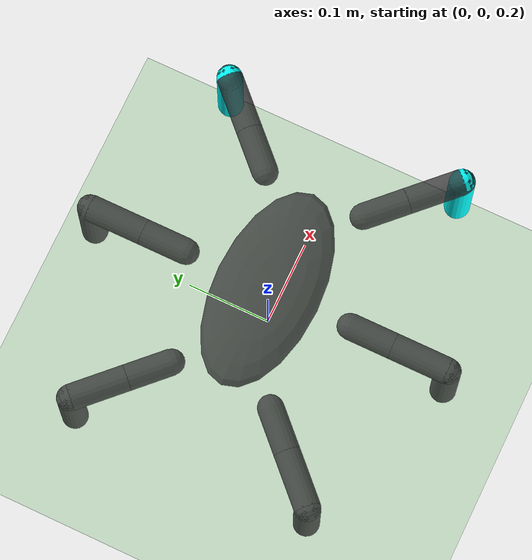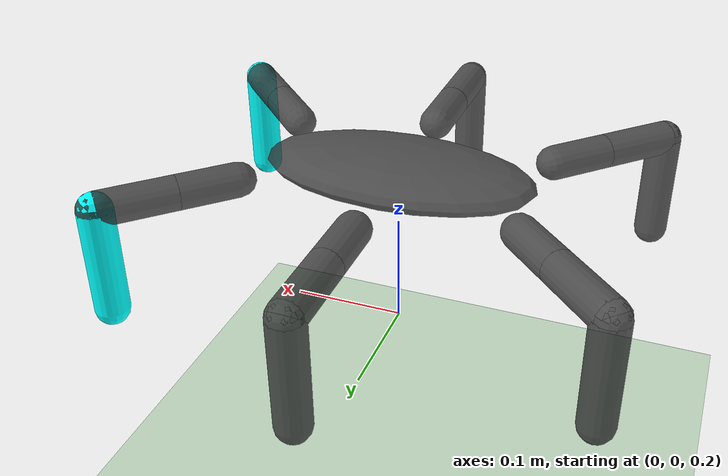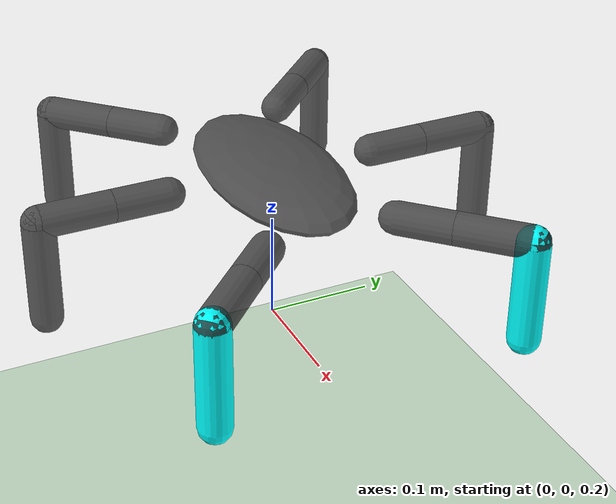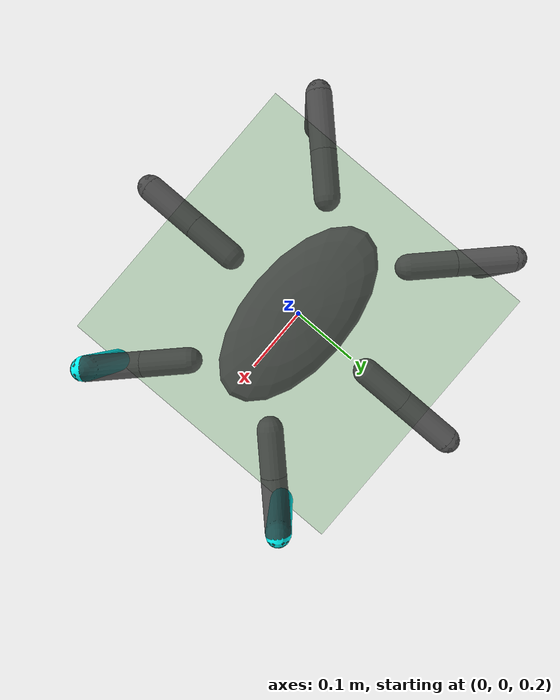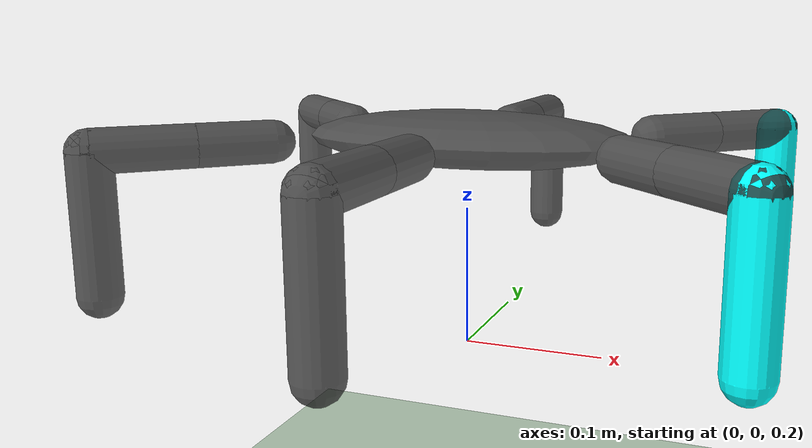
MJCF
<mujoco model="hexapod">
  <compiler angle="radian" coordinate="local" inertiafromgeom="true"/>
  <option integrator="RK4" timestep="0.02"/>
  <size nconmax="1000"/>

  <default>
    <joint armature="0.1" damping="3" limited="true"/>
    <geom conaffinity="0" condim="3" density="5.0" friction="1 0.5 0.5" margin="0.005" rgba="0.2 0.2 0.2 0.8"/>
  </default>

  <asset>
    <texture type="skybox" builtin="gradient" width="100" height="100" rgb1="1 1 1" rgb2="0 0 0" />
    <texture name="texgeom" type="cube" builtin="flat" mark="cross" width="127" height="1278" rgb1="0.8 0.6 0.4" rgb2="0.8 0.6 0.4" markrgb="1 1 1" random="0.01" />
    <texture name="texplane" type="2d" width="30" height="30" file="white2.png"/>
    <texture name="texhex" type="2d" width="1" height="1" file="white2.png"/>
    <texture name="texleg" type="2d" width="1" height="1" file="white2.png"/>
    <material name="MatPlane" reflectance="0.3" shininess="0.2" specular="1" texrepeat="8 8" texture="texplane"/>
    <material name="MatHex" reflectance="0.0" shininess="1" specular="1" texrepeat=".6 0.6" texture="texhex"/>
    <material name="MatLeg" reflectance="0.0" shininess="1" specular="1" texrepeat="1 1" texture="texleg"/>
    <material name='geom' texture="texgeom" texuniform="true" />
  </asset>

  <worldbody>
    <light cutoff="100" diffuse="0.5 0.5 0.5" dir="-0 0 -1.3" directional="false" exponent="1" pos="0 0 0.3" specular=".1 .1 .1"/>
    <geom conaffinity="1" condim="3" material="MatPlane" name="floor" pos="0 0 0" rgba="0.8 0.9 0.8 1" size="10 10 10" type="plane"/>
    <body name="torso" pos="0 0 0.35">
      <camera name="track" mode="track" pos="0 -1.2 0.4" xyaxes="1 0 0 0 0.3 1"/>
      <geom name="torso_geom" pos="0 0 0" size="0.12 0.06 0.02" mass="1" type="ellipsoid"/>
      <joint armature="0" damping="0" limited="false" margin="0.01" name="root" pos="0 0 0" type="free"/>

      <body name="front_left_leg" pos="0.12 0.06 0">
        <joint axis="0 0 1" name="coxa_fl" pos="0.0 0.0 0.0" range="-1.5708 1.5708" type="hinge"/>
          <geom fromto="0.0 0.0 0.0 0.03676 0.03676 0.0" name="coxa_fl_geom" size="0.015"  type="capsule"/>
          <body pos="0.03676 0.03676 0">
            <joint axis="-1 1 0" name="femur_fl" pos="0.0 0.0 0.0" range="-1.5708 1.5708" type="hinge"/>
            <geom fromto="0.0 0.0 0.0 0.0466 0.0466 0.0" name="femur_fl_geom" size="0.015" type="capsule"/>
             <body pos="0.0466 0.0466 0.0">
                <joint axis="-1 1 0" name="tibia_fl" pos="0.0 0.0 0.0" range="-0.7854 0.7854" type="hinge"/>
                <geom fromto="0.0 0.0 0.0 0.0 0.0 -0.095" name="tibia_fl_geom" size="0.015" type="capsule" rgba="0 1 1 1"/>
            </body>
          </body>
      </body>

      <body name="mid_left_leg" pos="0.0 0.1 0">
        <joint axis="0 0 1" name="coxa_ml" pos="0.0 0.0 0.0" range="-1.5708 1.5708" type="hinge"/>
          <geom fromto="0.0 0.0 0.0 0.0 0.052 0.0" name="coxa_ml_geom" size="0.015" type="capsule"/>
          <body pos="0.0 0.052 0">
            <joint axis="-1 0 0" name="femur_ml" pos="0.0 0.0 0.0" range="-1.5708 1.5708" type="hinge"/>
            <geom fromto="0.0 0.0 0.0 0.0 0.066 0.0" name="femur_ml_geom" size="0.015" type="capsule"/>
             <body pos="0.0 0.066 0">
                <joint axis="-1 0 0" name="tibia_ml" pos="0.0 0.0 0.0" range="-0.7854 0.7854" type="hinge"/>
                <geom fromto="0.0 0.0 0.0 0.0 0.0 -0.095" name="tibia_ml_geom" size="0.015" type="capsule"/>
            </body>
          </body>
      </body>

      <body name="front_right_leg" pos="0.12 -0.06 0">
        <joint axis="0 0 1" name="coxa_fr" pos="0.0 0.0 0.0" range="-1.5708 1.5708" type="hinge"/>
          <geom fromto="0.0 0.0 0.0 0.03676 -0.03676 0.0" name="coxa_fr_geom" size="0.015" type="capsule"/>
          <body pos="0.03676 -0.03676 0">
            <joint axis="1 1 0" name="femur_fr" pos="0.0 0.0 0.0" range="-1.5708 1.5708" type="hinge"/>
            <geom fromto="0.0 0.0 0.0 0.0466 -0.0466 0.0" name="femur_fr_geom" size="0.015" type="capsule"/>
             <body pos="0.0466 -0.0466 0">
                <joint axis="1 1 0" name="tibia_fr" pos="0.0 0.0 0.0" range="-0.7854 0.7854" type="hinge"/>
                <geom fromto="0.0 0.0 0.0 0.0 0.0 -0.095" name="tibia_fr_geom" size="0.015" type="capsule" rgba="0 1 1 1"/>
            </body>
          </body>
      </body>

      <body name="mid_right_leg" pos="0.0 -0.1 0">
        <joint axis="0 0 1" name="coxa_mr" pos="0.0 0.0 0.0" range="-1.5708 1.5708" type="hinge"/>
          <geom fromto="0.0 0.0 0.0 0.0 -0.052 0.0" name="coxa_mr_geom" size="0.015" type="capsule"/>
          <body pos="0.0 -0.052 0">
            <joint axis="1 0 0" name="femur_mr" pos="0.0 0.0 0.0" range="-1.5708 1.5708" type="hinge"/>
            <geom fromto="0.0 0.0 0.0 0.0 -0.066 0.0" name="femur_mr_geom" size="0.015" type="capsule"/>
             <body pos="0.0 -0.066 0">
                <joint axis="1 0 0" name="tibia_mr" pos="0.0 0.0 0.0" range="-0.7854 0.7854" type="hinge"/>
                <geom fromto="0.0 0.0 0.0 0.0 0 -0.095" name="tibia_mr_geom" size="0.015" type="capsule"/>
            </body>
          </body>
      </body>

      <body name="back_right_leg" pos="-0.12 -0.06 0">
        <joint axis="0 0 1" name="coxa_rr" pos="0.0 0.0 0.0" range="-1.5708 1.5708" type="hinge"/>
          <geom fromto="0.0 0.0 0.0 -0.03676 -0.03676 0.0" name="coxa_rr_geom" size="0.015" type="capsule"/>
          <body pos="-0.03676 -0.03676 0">
            <joint axis="1 -1 0" name="femur_rr" pos="0.0 0.0 0.0" range="-1.5708 1.5708" type="hinge"/>
            <geom fromto="0.0 0.0 0.0 -0.0466 -0.0466 0.0" name="femur_rr_geom" size="0.015" type="capsule"/>
             <body pos="-0.0466 -0.0466 0">
                <joint axis="1 -1 0" name="tibia_rr" pos="0.0 0.0 0.0" range="-0.7854 0.7854" type="hinge"/>
                <geom fromto="0.0 0.0 0.0 0.0 0.0 -0.095" name="tibia_rr_geom" size="0.015" type="capsule"/>
            </body>
          </body>
      </body>

      <body name="back_left_leg" pos="-0.12 0.06 0">
        <joint axis="0 0 1" name="coxa_rl" pos="0.0 0.0 0.0" range="-1.5708 1.5708" type="hinge"/>
          <geom fromto="0.0 0.0 0.0 -0.03676 0.03676 0.0" name="coxa_rl_geom" size="0.015" type="capsule"/>
          <body pos="-0.03676 0.03676 0">
            <joint axis="-1 -1 0" name="femur_rl" pos="0.0 0.0 0.0" range="-1.5708 1.5708" type="hinge"/>
            <geom fromto="0.0 0.0 0.0 -0.0466 0.0466 0.0" name="femur_rl_geom" size="0.015" type="capsule"/>
             <body pos="-0.0466 0.04660 0">
                <joint axis="-1 -1 0" name="tibia_rl" pos="0.0 0.0 0.0" range="-0.7854 0.7854" type="hinge"/>
                <geom fromto="0.0 0.0 0.0 0.0 0.0 -0.095" name="tibia_rl_geom" size="0.015" type="capsule"/>
            </body>
          </body>
      </body>
    </body>

  </worldbody>
  <actuator>
    <position joint="coxa_fl" kp="40"/>
    <position joint="femur_fl" kp="40"/>
    <position joint="tibia_fl" kp="40"/>
    <position joint="coxa_fr" kp="40"/>
    <position joint="femur_fr" kp="40"/>
    <position joint="tibia_fr" kp="40"/>
    <position joint="coxa_rr" kp="40"/>
    <position joint="femur_rr" kp="40"/>
    <position joint="tibia_rr" kp="40"/>
    <position joint="coxa_rl" kp="40"/>
    <position joint="femur_rl" kp="40"/>
    <position joint="tibia_rl" kp="40"/>
    <position joint="coxa_mr" kp="40"/>
    <position joint="femur_mr" kp="40"/>
    <position joint="tibia_mr" kp="40"/>
    <position joint="coxa_ml" kp="40"/>
    <position joint="femur_ml" kp="40"/>
    <position joint="tibia_ml" kp="40"/>

  </actuator>

  <sensor>
    <framequat name="imu_quat" objtype="body" objname="torso"/>
  </sensor>
</mujoco>
